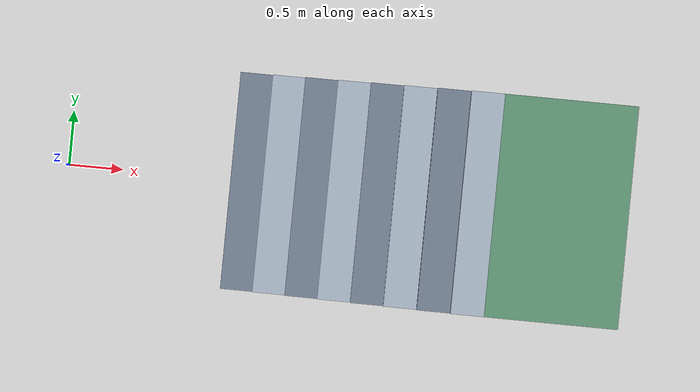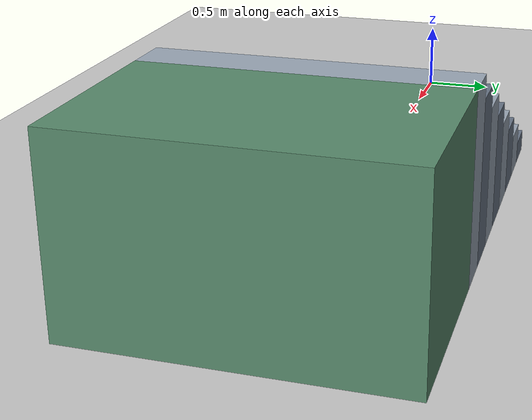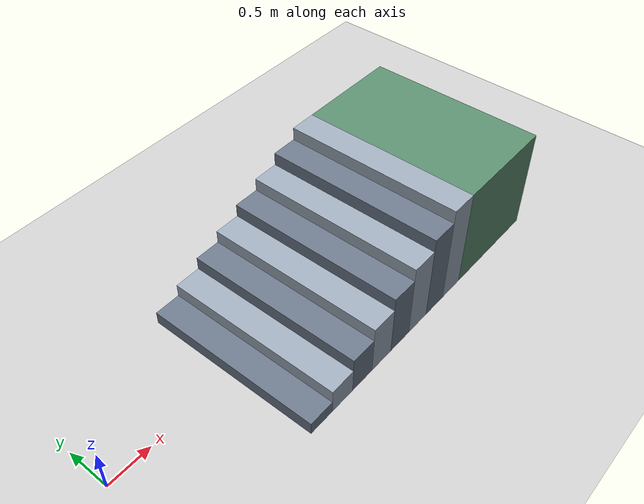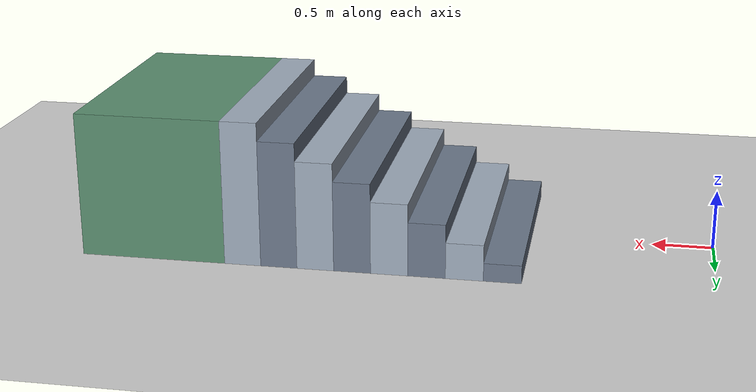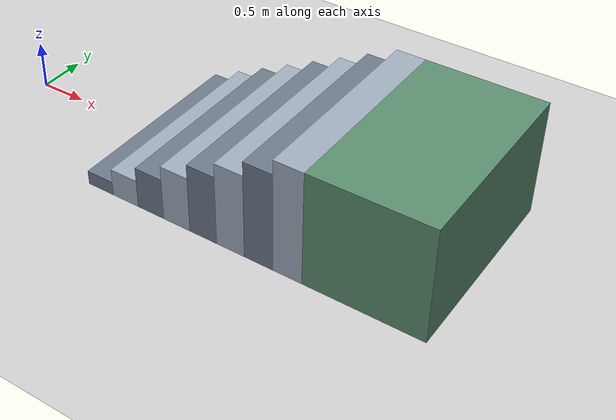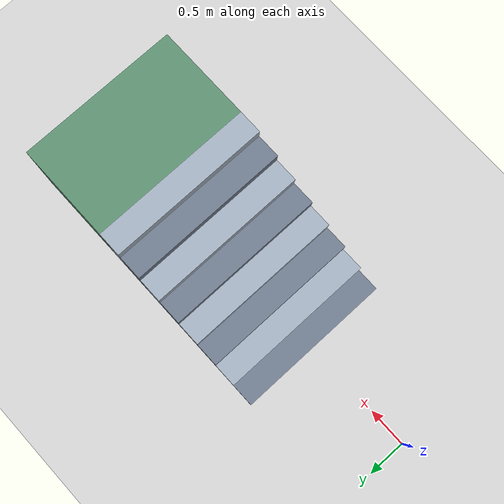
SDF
<?xml version="1.0"?>
<!-- 8 x 15 cm stairs, 30 cm tread, 2 m width, 1.2 m top platform. -->
<sdf version="1.5">
  <world name="default">
    <physics type="ode">
      <max_step_size>0.0005</max_step_size>
      <real_time_factor>1</real_time_factor>
      <real_time_update_rate>2000</real_time_update_rate>
      <gravity>0 0 -9.81</gravity>
      <ode>
        <solver>
          <type>quick</type>
          <iters>50</iters>
          <sor>1.3</sor>
        </solver>
        <constraints>
          <cfm>0.0</cfm>
          <erp>0.2</erp>
          <contact_max_correcting_vel>10.0</contact_max_correcting_vel>
          <contact_surface_layer>0.001</contact_surface_layer>
        </constraints>
      </ode>
    </physics>
    <scene>
      <sky>
        <clouds>
          <speed>12</speed>
        </clouds>
      </sky>
    </scene>
    <include>
      <uri>model://sun</uri>
    </include>
    <include>
      <uri>model://ground_plane</uri>
    </include>
    <model name="stairs_15cm">
      <static>true</static>
      <!-- Eight solid risers: rise 0.15 m, tread 0.30 m, width 2.0 m; first face x=1.5 m, ascent +X. -->
      <link name="step_01">
        <pose>1.650000 0 0.075000 0 0 0</pose>
        <collision name="step_01_collision">
          <geometry>
            <box>
              <size>0.300000 2.000000 0.150000</size>
            </box>
          </geometry>
          <surface>
            <friction>
              <ode>
                <mu>1.0</mu>
                <mu2>1.0</mu2>
              </ode>
            </friction>
          </surface>
        </collision>
        <visual name="step_01_visual">
          <geometry>
            <box>
              <size>0.300000 2.000000 0.150000</size>
            </box>
          </geometry>
          <material>
            <ambient>0.42 0.47 0.54 1</ambient>
            <diffuse>0.42 0.47 0.54 1</diffuse>
          </material>
        </visual>
      </link>
      <link name="step_02">
        <pose>1.950000 0 0.150000 0 0 0</pose>
        <collision name="step_02_collision">
          <geometry>
            <box>
              <size>0.300000 2.000000 0.300000</size>
            </box>
          </geometry>
          <surface>
            <friction>
              <ode>
                <mu>1.0</mu>
                <mu2>1.0</mu2>
              </ode>
            </friction>
          </surface>
        </collision>
        <visual name="step_02_visual">
          <geometry>
            <box>
              <size>0.300000 2.000000 0.300000</size>
            </box>
          </geometry>
          <material>
            <ambient>0.62 0.67 0.73 1</ambient>
            <diffuse>0.62 0.67 0.73 1</diffuse>
          </material>
        </visual>
      </link>
      <link name="step_03">
        <pose>2.250000 0 0.225000 0 0 0</pose>
        <collision name="step_03_collision">
          <geometry>
            <box>
              <size>0.300000 2.000000 0.450000</size>
            </box>
          </geometry>
          <surface>
            <friction>
              <ode>
                <mu>1.0</mu>
                <mu2>1.0</mu2>
              </ode>
            </friction>
          </surface>
        </collision>
        <visual name="step_03_visual">
          <geometry>
            <box>
              <size>0.300000 2.000000 0.450000</size>
            </box>
          </geometry>
          <material>
            <ambient>0.42 0.47 0.54 1</ambient>
            <diffuse>0.42 0.47 0.54 1</diffuse>
          </material>
        </visual>
      </link>
      <link name="step_04">
        <pose>2.550000 0 0.300000 0 0 0</pose>
        <collision name="step_04_collision">
          <geometry>
            <box>
              <size>0.300000 2.000000 0.600000</size>
            </box>
          </geometry>
          <surface>
            <friction>
              <ode>
                <mu>1.0</mu>
                <mu2>1.0</mu2>
              </ode>
            </friction>
          </surface>
        </collision>
        <visual name="step_04_visual">
          <geometry>
            <box>
              <size>0.300000 2.000000 0.600000</size>
            </box>
          </geometry>
          <material>
            <ambient>0.62 0.67 0.73 1</ambient>
            <diffuse>0.62 0.67 0.73 1</diffuse>
          </material>
        </visual>
      </link>
      <link name="step_05">
        <pose>2.850000 0 0.375000 0 0 0</pose>
        <collision name="step_05_collision">
          <geometry>
            <box>
              <size>0.300000 2.000000 0.750000</size>
            </box>
          </geometry>
          <surface>
            <friction>
              <ode>
                <mu>1.0</mu>
                <mu2>1.0</mu2>
              </ode>
            </friction>
          </surface>
        </collision>
        <visual name="step_05_visual">
          <geometry>
            <box>
              <size>0.300000 2.000000 0.750000</size>
            </box>
          </geometry>
          <material>
            <ambient>0.42 0.47 0.54 1</ambient>
            <diffuse>0.42 0.47 0.54 1</diffuse>
          </material>
        </visual>
      </link>
      <link name="step_06">
        <pose>3.150000 0 0.450000 0 0 0</pose>
        <collision name="step_06_collision">
          <geometry>
            <box>
              <size>0.300000 2.000000 0.900000</size>
            </box>
          </geometry>
          <surface>
            <friction>
              <ode>
                <mu>1.0</mu>
                <mu2>1.0</mu2>
              </ode>
            </friction>
          </surface>
        </collision>
        <visual name="step_06_visual">
          <geometry>
            <box>
              <size>0.300000 2.000000 0.900000</size>
            </box>
          </geometry>
          <material>
            <ambient>0.62 0.67 0.73 1</ambient>
            <diffuse>0.62 0.67 0.73 1</diffuse>
          </material>
        </visual>
      </link>
      <link name="step_07">
        <pose>3.450000 0 0.525000 0 0 0</pose>
        <collision name="step_07_collision">
          <geometry>
            <box>
              <size>0.300000 2.000000 1.050000</size>
            </box>
          </geometry>
          <surface>
            <friction>
              <ode>
                <mu>1.0</mu>
                <mu2>1.0</mu2>
              </ode>
            </friction>
          </surface>
        </collision>
        <visual name="step_07_visual">
          <geometry>
            <box>
              <size>0.300000 2.000000 1.050000</size>
            </box>
          </geometry>
          <material>
            <ambient>0.42 0.47 0.54 1</ambient>
            <diffuse>0.42 0.47 0.54 1</diffuse>
          </material>
        </visual>
      </link>
      <link name="step_08">
        <pose>3.750000 0 0.600000 0 0 0</pose>
        <collision name="step_08_collision">
          <geometry>
            <box>
              <size>0.300000 2.000000 1.200000</size>
            </box>
          </geometry>
          <surface>
            <friction>
              <ode>
                <mu>1.0</mu>
                <mu2>1.0</mu2>
              </ode>
            </friction>
          </surface>
        </collision>
        <visual name="step_08_visual">
          <geometry>
            <box>
              <size>0.300000 2.000000 1.200000</size>
            </box>
          </geometry>
          <material>
            <ambient>0.62 0.67 0.73 1</ambient>
            <diffuse>0.62 0.67 0.73 1</diffuse>
          </material>
        </visual>
      </link>
      <link name="top_landing">
        <pose>4.500000 0 0.600000 0 0 0</pose>
        <collision name="top_landing_collision">
          <geometry>
            <box>
              <size>1.200000 2.000000 1.200000</size>
            </box>
          </geometry>
          <surface>
            <friction>
              <ode>
                <mu>1.0</mu>
                <mu2>1.0</mu2>
              </ode>
            </friction>
          </surface>
        </collision>
        <visual name="top_landing_visual">
          <geometry>
            <box>
              <size>1.200000 2.000000 1.200000</size>
            </box>
          </geometry>
          <material>
            <ambient>0.35 0.55 0.43 1</ambient>
            <diffuse>0.35 0.55 0.43 1</diffuse>
          </material>
        </visual>
      </link>
    </model>
  </world>
</sdf>
